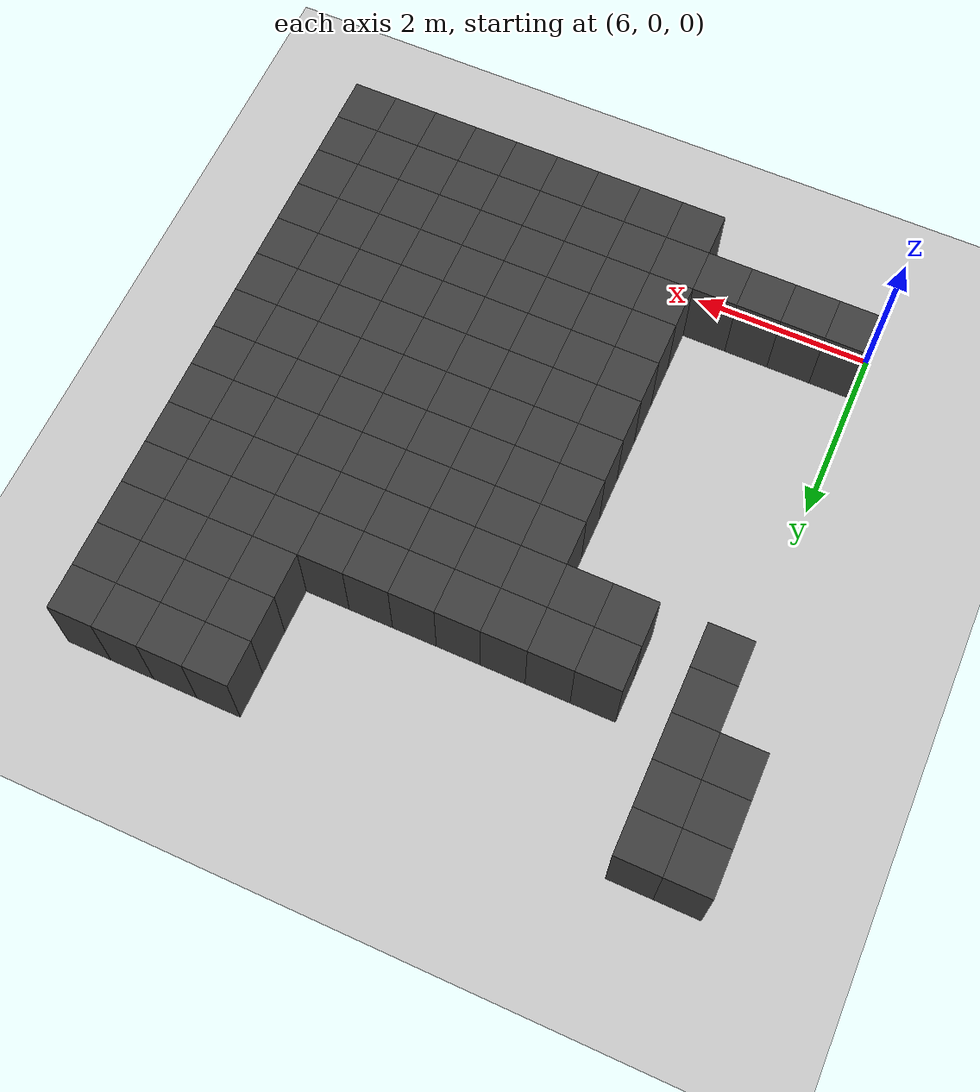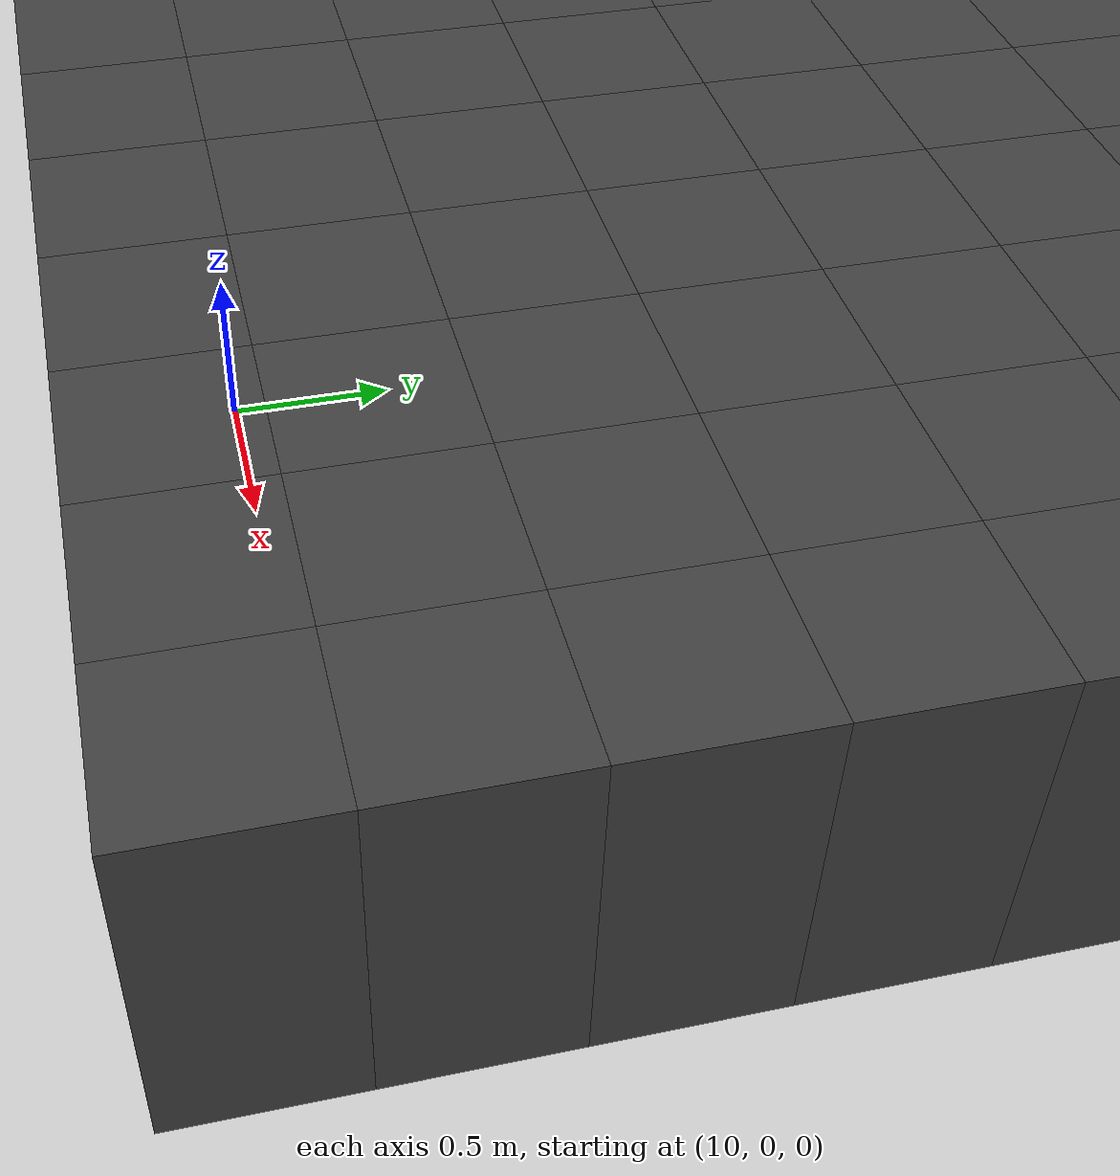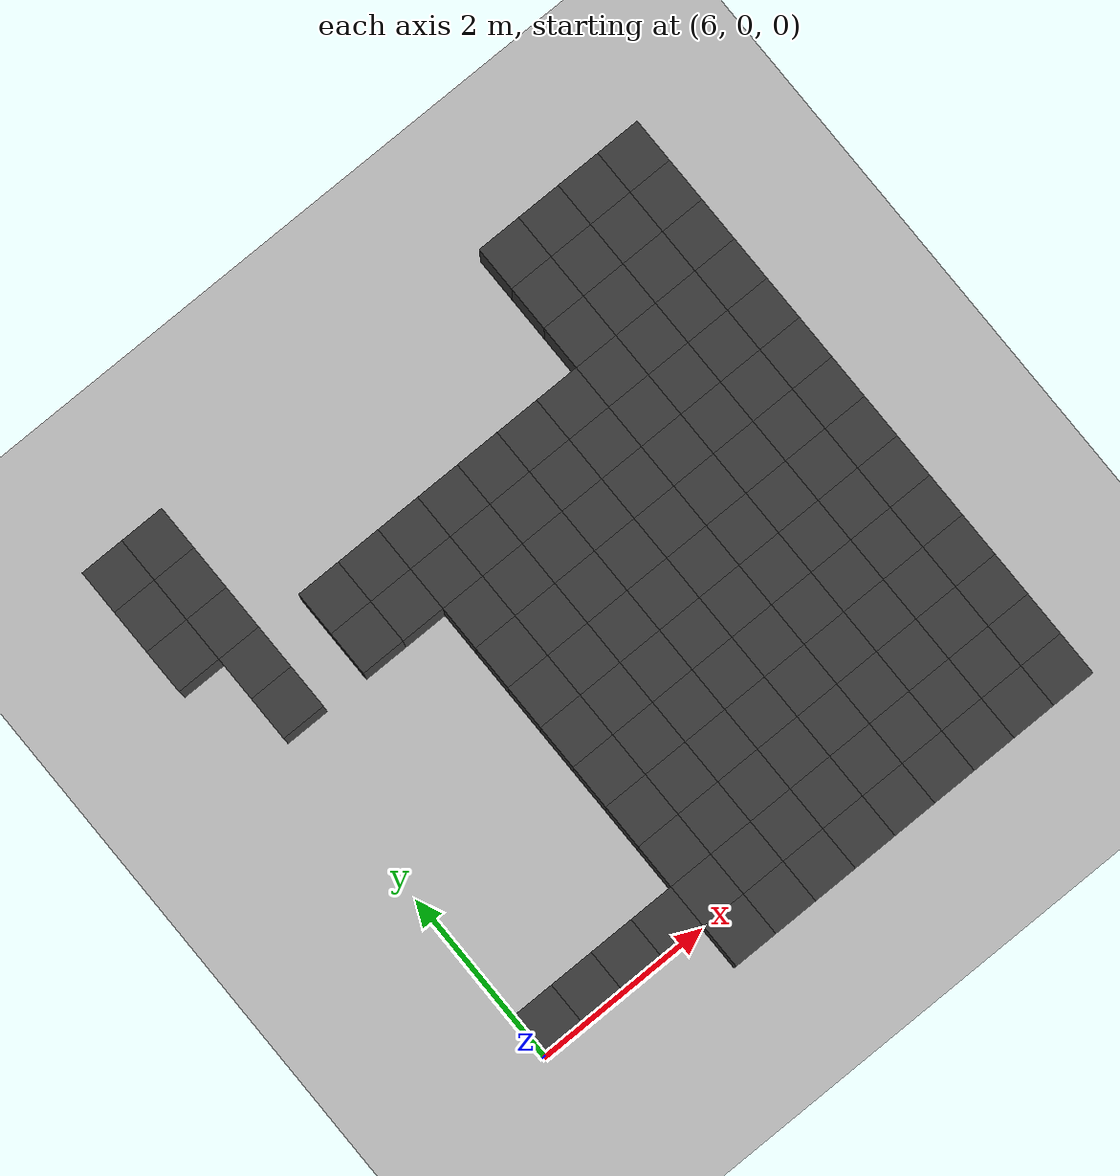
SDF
<sdf version="1.7">
 <world name="map_11779">
  <model name="ground_plane">
   <static>true</static>
   <link name="link">
    <collision name="collision">
     <geometry><plane><normal>0 0 1</normal><size>200 200</size></plane></geometry>
    </collision>
    <visual name="visual">
     <geometry><plane><normal>0 0 1</normal><size>200 200</size></plane></geometry>
     <material><ambient>0.8 0.8 0.8 1</ambient><diffuse>0.8 0.8 0.8 1</diffuse></material>
    </visual>
   </link>
  </model>
  <model name="maze_environment">
   <static>true</static>
   <link name="wall_532">
    <pose>5.750 6.250 0.500 0 0 0</pose>
    <collision name="col"><geometry><box><size>0.5 0.5 1.0</size></box></geometry></collision>
    <visual name="vis">
     <geometry><box><size>0.5 0.5 1.0</size></box></geometry>
     <material><ambient>0.15 0.15 0.15 1</ambient><diffuse>0.25 0.25 0.25 1</diffuse></material>
    </visual>
   </link>
   <link name="wall_533">
    <pose>6.250 6.250 0.500 0 0 0</pose>
    <collision name="col"><geometry><box><size>0.5 0.5 1.0</size></box></geometry></collision>
    <visual name="vis">
     <geometry><box><size>0.5 0.5 1.0</size></box></geometry>
     <material><ambient>0.15 0.15 0.15 1</ambient><diffuse>0.25 0.25 0.25 1</diffuse></material>
    </visual>
   </link>
   <link name="wall_534">
    <pose>10.750 6.250 0.500 0 0 0</pose>
    <collision name="col"><geometry><box><size>0.5 0.5 1.0</size></box></geometry></collision>
    <visual name="vis">
     <geometry><box><size>0.5 0.5 1.0</size></box></geometry>
     <material><ambient>0.15 0.15 0.15 1</ambient><diffuse>0.25 0.25 0.25 1</diffuse></material>
    </visual>
   </link>
   <link name="wall_535">
    <pose>11.250 6.250 0.500 0 0 0</pose>
    <collision name="col"><geometry><box><size>0.5 0.5 1.0</size></box></geometry></collision>
    <visual name="vis">
     <geometry><box><size>0.5 0.5 1.0</size></box></geometry>
     <material><ambient>0.15 0.15 0.15 1</ambient><diffuse>0.25 0.25 0.25 1</diffuse></material>
    </visual>
   </link>
   <link name="wall_536">
    <pose>11.750 6.250 0.500 0 0 0</pose>
    <collision name="col"><geometry><box><size>0.5 0.5 1.0</size></box></geometry></collision>
    <visual name="vis">
     <geometry><box><size>0.5 0.5 1.0</size></box></geometry>
     <material><ambient>0.15 0.15 0.15 1</ambient><diffuse>0.25 0.25 0.25 1</diffuse></material>
    </visual>
   </link>
   <link name="wall_537">
    <pose>12.250 6.250 0.500 0 0 0</pose>
    <collision name="col"><geometry><box><size>0.5 0.5 1.0</size></box></geometry></collision>
    <visual name="vis">
     <geometry><box><size>0.5 0.5 1.0</size></box></geometry>
     <material><ambient>0.15 0.15 0.15 1</ambient><diffuse>0.25 0.25 0.25 1</diffuse></material>
    </visual>
   </link>
   <link name="wall_566">
    <pose>5.750 5.750 0.500 0 0 0</pose>
    <collision name="col"><geometry><box><size>0.5 0.5 1.0</size></box></geometry></collision>
    <visual name="vis">
     <geometry><box><size>0.5 0.5 1.0</size></box></geometry>
     <material><ambient>0.15 0.15 0.15 1</ambient><diffuse>0.25 0.25 0.25 1</diffuse></material>
    </visual>
   </link>
   <link name="wall_567">
    <pose>6.250 5.750 0.500 0 0 0</pose>
    <collision name="col"><geometry><box><size>0.5 0.5 1.0</size></box></geometry></collision>
    <visual name="vis">
     <geometry><box><size>0.5 0.5 1.0</size></box></geometry>
     <material><ambient>0.15 0.15 0.15 1</ambient><diffuse>0.25 0.25 0.25 1</diffuse></material>
    </visual>
   </link>
   <link name="wall_568">
    <pose>10.750 5.750 0.500 0 0 0</pose>
    <collision name="col"><geometry><box><size>0.5 0.5 1.0</size></box></geometry></collision>
    <visual name="vis">
     <geometry><box><size>0.5 0.5 1.0</size></box></geometry>
     <material><ambient>0.15 0.15 0.15 1</ambient><diffuse>0.25 0.25 0.25 1</diffuse></material>
    </visual>
   </link>
   <link name="wall_569">
    <pose>11.250 5.750 0.500 0 0 0</pose>
    <collision name="col"><geometry><box><size>0.5 0.5 1.0</size></box></geometry></collision>
    <visual name="vis">
     <geometry><box><size>0.5 0.5 1.0</size></box></geometry>
     <material><ambient>0.15 0.15 0.15 1</ambient><diffuse>0.25 0.25 0.25 1</diffuse></material>
    </visual>
   </link>
   <link name="wall_570">
    <pose>11.750 5.750 0.500 0 0 0</pose>
    <collision name="col"><geometry><box><size>0.5 0.5 1.0</size></box></geometry></collision>
    <visual name="vis">
     <geometry><box><size>0.5 0.5 1.0</size></box></geometry>
     <material><ambient>0.15 0.15 0.15 1</ambient><diffuse>0.25 0.25 0.25 1</diffuse></material>
    </visual>
   </link>
   <link name="wall_571">
    <pose>12.250 5.750 0.500 0 0 0</pose>
    <collision name="col"><geometry><box><size>0.5 0.5 1.0</size></box></geometry></collision>
    <visual name="vis">
     <geometry><box><size>0.5 0.5 1.0</size></box></geometry>
     <material><ambient>0.15 0.15 0.15 1</ambient><diffuse>0.25 0.25 0.25 1</diffuse></material>
    </visual>
   </link>
   <link name="wall_600">
    <pose>5.750 5.250 0.500 0 0 0</pose>
    <collision name="col"><geometry><box><size>0.5 0.5 1.0</size></box></geometry></collision>
    <visual name="vis">
     <geometry><box><size>0.5 0.5 1.0</size></box></geometry>
     <material><ambient>0.15 0.15 0.15 1</ambient><diffuse>0.25 0.25 0.25 1</diffuse></material>
    </visual>
   </link>
   <link name="wall_601">
    <pose>6.250 5.250 0.500 0 0 0</pose>
    <collision name="col"><geometry><box><size>0.5 0.5 1.0</size></box></geometry></collision>
    <visual name="vis">
     <geometry><box><size>0.5 0.5 1.0</size></box></geometry>
     <material><ambient>0.15 0.15 0.15 1</ambient><diffuse>0.25 0.25 0.25 1</diffuse></material>
    </visual>
   </link>
   <link name="wall_602">
    <pose>10.750 5.250 0.500 0 0 0</pose>
    <collision name="col"><geometry><box><size>0.5 0.5 1.0</size></box></geometry></collision>
    <visual name="vis">
     <geometry><box><size>0.5 0.5 1.0</size></box></geometry>
     <material><ambient>0.15 0.15 0.15 1</ambient><diffuse>0.25 0.25 0.25 1</diffuse></material>
    </visual>
   </link>
   <link name="wall_603">
    <pose>11.250 5.250 0.500 0 0 0</pose>
    <collision name="col"><geometry><box><size>0.5 0.5 1.0</size></box></geometry></collision>
    <visual name="vis">
     <geometry><box><size>0.5 0.5 1.0</size></box></geometry>
     <material><ambient>0.15 0.15 0.15 1</ambient><diffuse>0.25 0.25 0.25 1</diffuse></material>
    </visual>
   </link>
   <link name="wall_604">
    <pose>11.750 5.250 0.500 0 0 0</pose>
    <collision name="col"><geometry><box><size>0.5 0.5 1.0</size></box></geometry></collision>
    <visual name="vis">
     <geometry><box><size>0.5 0.5 1.0</size></box></geometry>
     <material><ambient>0.15 0.15 0.15 1</ambient><diffuse>0.25 0.25 0.25 1</diffuse></material>
    </visual>
   </link>
   <link name="wall_605">
    <pose>12.250 5.250 0.500 0 0 0</pose>
    <collision name="col"><geometry><box><size>0.5 0.5 1.0</size></box></geometry></collision>
    <visual name="vis">
     <geometry><box><size>0.5 0.5 1.0</size></box></geometry>
     <material><ambient>0.15 0.15 0.15 1</ambient><diffuse>0.25 0.25 0.25 1</diffuse></material>
    </visual>
   </link>
   <link name="wall_635">
    <pose>6.250 4.750 0.500 0 0 0</pose>
    <collision name="col"><geometry><box><size>0.5 0.5 1.0</size></box></geometry></collision>
    <visual name="vis">
     <geometry><box><size>0.5 0.5 1.0</size></box></geometry>
     <material><ambient>0.15 0.15 0.15 1</ambient><diffuse>0.25 0.25 0.25 1</diffuse></material>
    </visual>
   </link>
   <link name="wall_636">
    <pose>7.250 4.750 0.500 0 0 0</pose>
    <collision name="col"><geometry><box><size>0.5 0.5 1.0</size></box></geometry></collision>
    <visual name="vis">
     <geometry><box><size>0.5 0.5 1.0</size></box></geometry>
     <material><ambient>0.15 0.15 0.15 1</ambient><diffuse>0.25 0.25 0.25 1</diffuse></material>
    </visual>
   </link>
   <link name="wall_637">
    <pose>7.750 4.750 0.500 0 0 0</pose>
    <collision name="col"><geometry><box><size>0.5 0.5 1.0</size></box></geometry></collision>
    <visual name="vis">
     <geometry><box><size>0.5 0.5 1.0</size></box></geometry>
     <material><ambient>0.15 0.15 0.15 1</ambient><diffuse>0.25 0.25 0.25 1</diffuse></material>
    </visual>
   </link>
   <link name="wall_638">
    <pose>8.250 4.750 0.500 0 0 0</pose>
    <collision name="col"><geometry><box><size>0.5 0.5 1.0</size></box></geometry></collision>
    <visual name="vis">
     <geometry><box><size>0.5 0.5 1.0</size></box></geometry>
     <material><ambient>0.15 0.15 0.15 1</ambient><diffuse>0.25 0.25 0.25 1</diffuse></material>
    </visual>
   </link>
   <link name="wall_639">
    <pose>8.750 4.750 0.500 0 0 0</pose>
    <collision name="col"><geometry><box><size>0.5 0.5 1.0</size></box></geometry></collision>
    <visual name="vis">
     <geometry><box><size>0.5 0.5 1.0</size></box></geometry>
     <material><ambient>0.15 0.15 0.15 1</ambient><diffuse>0.25 0.25 0.25 1</diffuse></material>
    </visual>
   </link>
   <link name="wall_640">
    <pose>9.250 4.750 0.500 0 0 0</pose>
    <collision name="col"><geometry><box><size>0.5 0.5 1.0</size></box></geometry></collision>
    <visual name="vis">
     <geometry><box><size>0.5 0.5 1.0</size></box></geometry>
     <material><ambient>0.15 0.15 0.15 1</ambient><diffuse>0.25 0.25 0.25 1</diffuse></material>
    </visual>
   </link>
   <link name="wall_641">
    <pose>9.750 4.750 0.500 0 0 0</pose>
    <collision name="col"><geometry><box><size>0.5 0.5 1.0</size></box></geometry></collision>
    <visual name="vis">
     <geometry><box><size>0.5 0.5 1.0</size></box></geometry>
     <material><ambient>0.15 0.15 0.15 1</ambient><diffuse>0.25 0.25 0.25 1</diffuse></material>
    </visual>
   </link>
   <link name="wall_642">
    <pose>10.250 4.750 0.500 0 0 0</pose>
    <collision name="col"><geometry><box><size>0.5 0.5 1.0</size></box></geometry></collision>
    <visual name="vis">
     <geometry><box><size>0.5 0.5 1.0</size></box></geometry>
     <material><ambient>0.15 0.15 0.15 1</ambient><diffuse>0.25 0.25 0.25 1</diffuse></material>
    </visual>
   </link>
   <link name="wall_643">
    <pose>10.750 4.750 0.500 0 0 0</pose>
    <collision name="col"><geometry><box><size>0.5 0.5 1.0</size></box></geometry></collision>
    <visual name="vis">
     <geometry><box><size>0.5 0.5 1.0</size></box></geometry>
     <material><ambient>0.15 0.15 0.15 1</ambient><diffuse>0.25 0.25 0.25 1</diffuse></material>
    </visual>
   </link>
   <link name="wall_644">
    <pose>11.250 4.750 0.500 0 0 0</pose>
    <collision name="col"><geometry><box><size>0.5 0.5 1.0</size></box></geometry></collision>
    <visual name="vis">
     <geometry><box><size>0.5 0.5 1.0</size></box></geometry>
     <material><ambient>0.15 0.15 0.15 1</ambient><diffuse>0.25 0.25 0.25 1</diffuse></material>
    </visual>
   </link>
   <link name="wall_645">
    <pose>11.750 4.750 0.500 0 0 0</pose>
    <collision name="col"><geometry><box><size>0.5 0.5 1.0</size></box></geometry></collision>
    <visual name="vis">
     <geometry><box><size>0.5 0.5 1.0</size></box></geometry>
     <material><ambient>0.15 0.15 0.15 1</ambient><diffuse>0.25 0.25 0.25 1</diffuse></material>
    </visual>
   </link>
   <link name="wall_646">
    <pose>12.250 4.750 0.500 0 0 0</pose>
    <collision name="col"><geometry><box><size>0.5 0.5 1.0</size></box></geometry></collision>
    <visual name="vis">
     <geometry><box><size>0.5 0.5 1.0</size></box></geometry>
     <material><ambient>0.15 0.15 0.15 1</ambient><diffuse>0.25 0.25 0.25 1</diffuse></material>
    </visual>
   </link>
   <link name="wall_676">
    <pose>6.250 4.250 0.500 0 0 0</pose>
    <collision name="col"><geometry><box><size>0.5 0.5 1.0</size></box></geometry></collision>
    <visual name="vis">
     <geometry><box><size>0.5 0.5 1.0</size></box></geometry>
     <material><ambient>0.15 0.15 0.15 1</ambient><diffuse>0.25 0.25 0.25 1</diffuse></material>
    </visual>
   </link>
   <link name="wall_677">
    <pose>7.250 4.250 0.500 0 0 0</pose>
    <collision name="col"><geometry><box><size>0.5 0.5 1.0</size></box></geometry></collision>
    <visual name="vis">
     <geometry><box><size>0.5 0.5 1.0</size></box></geometry>
     <material><ambient>0.15 0.15 0.15 1</ambient><diffuse>0.25 0.25 0.25 1</diffuse></material>
    </visual>
   </link>
   <link name="wall_678">
    <pose>7.750 4.250 0.500 0 0 0</pose>
    <collision name="col"><geometry><box><size>0.5 0.5 1.0</size></box></geometry></collision>
    <visual name="vis">
     <geometry><box><size>0.5 0.5 1.0</size></box></geometry>
     <material><ambient>0.15 0.15 0.15 1</ambient><diffuse>0.25 0.25 0.25 1</diffuse></material>
    </visual>
   </link>
   <link name="wall_679">
    <pose>8.250 4.250 0.500 0 0 0</pose>
    <collision name="col"><geometry><box><size>0.5 0.5 1.0</size></box></geometry></collision>
    <visual name="vis">
     <geometry><box><size>0.5 0.5 1.0</size></box></geometry>
     <material><ambient>0.15 0.15 0.15 1</ambient><diffuse>0.25 0.25 0.25 1</diffuse></material>
    </visual>
   </link>
   <link name="wall_680">
    <pose>8.750 4.250 0.500 0 0 0</pose>
    <collision name="col"><geometry><box><size>0.5 0.5 1.0</size></box></geometry></collision>
    <visual name="vis">
     <geometry><box><size>0.5 0.5 1.0</size></box></geometry>
     <material><ambient>0.15 0.15 0.15 1</ambient><diffuse>0.25 0.25 0.25 1</diffuse></material>
    </visual>
   </link>
   <link name="wall_681">
    <pose>9.250 4.250 0.500 0 0 0</pose>
    <collision name="col"><geometry><box><size>0.5 0.5 1.0</size></box></geometry></collision>
    <visual name="vis">
     <geometry><box><size>0.5 0.5 1.0</size></box></geometry>
     <material><ambient>0.15 0.15 0.15 1</ambient><diffuse>0.25 0.25 0.25 1</diffuse></material>
    </visual>
   </link>
   <link name="wall_682">
    <pose>9.750 4.250 0.500 0 0 0</pose>
    <collision name="col"><geometry><box><size>0.5 0.5 1.0</size></box></geometry></collision>
    <visual name="vis">
     <geometry><box><size>0.5 0.5 1.0</size></box></geometry>
     <material><ambient>0.15 0.15 0.15 1</ambient><diffuse>0.25 0.25 0.25 1</diffuse></material>
    </visual>
   </link>
   <link name="wall_683">
    <pose>10.250 4.250 0.500 0 0 0</pose>
    <collision name="col"><geometry><box><size>0.5 0.5 1.0</size></box></geometry></collision>
    <visual name="vis">
     <geometry><box><size>0.5 0.5 1.0</size></box></geometry>
     <material><ambient>0.15 0.15 0.15 1</ambient><diffuse>0.25 0.25 0.25 1</diffuse></material>
    </visual>
   </link>
   <link name="wall_684">
    <pose>10.750 4.250 0.500 0 0 0</pose>
    <collision name="col"><geometry><box><size>0.5 0.5 1.0</size></box></geometry></collision>
    <visual name="vis">
     <geometry><box><size>0.5 0.5 1.0</size></box></geometry>
     <material><ambient>0.15 0.15 0.15 1</ambient><diffuse>0.25 0.25 0.25 1</diffuse></material>
    </visual>
   </link>
   <link name="wall_685">
    <pose>11.250 4.250 0.500 0 0 0</pose>
    <collision name="col"><geometry><box><size>0.5 0.5 1.0</size></box></geometry></collision>
    <visual name="vis">
     <geometry><box><size>0.5 0.5 1.0</size></box></geometry>
     <material><ambient>0.15 0.15 0.15 1</ambient><diffuse>0.25 0.25 0.25 1</diffuse></material>
    </visual>
   </link>
   <link name="wall_686">
    <pose>11.750 4.250 0.500 0 0 0</pose>
    <collision name="col"><geometry><box><size>0.5 0.5 1.0</size></box></geometry></collision>
    <visual name="vis">
     <geometry><box><size>0.5 0.5 1.0</size></box></geometry>
     <material><ambient>0.15 0.15 0.15 1</ambient><diffuse>0.25 0.25 0.25 1</diffuse></material>
    </visual>
   </link>
   <link name="wall_687">
    <pose>12.250 4.250 0.500 0 0 0</pose>
    <collision name="col"><geometry><box><size>0.5 0.5 1.0</size></box></geometry></collision>
    <visual name="vis">
     <geometry><box><size>0.5 0.5 1.0</size></box></geometry>
     <material><ambient>0.15 0.15 0.15 1</ambient><diffuse>0.25 0.25 0.25 1</diffuse></material>
    </visual>
   </link>
   <link name="wall_722">
    <pose>8.250 3.750 0.500 0 0 0</pose>
    <collision name="col"><geometry><box><size>0.5 0.5 1.0</size></box></geometry></collision>
    <visual name="vis">
     <geometry><box><size>0.5 0.5 1.0</size></box></geometry>
     <material><ambient>0.15 0.15 0.15 1</ambient><diffuse>0.25 0.25 0.25 1</diffuse></material>
    </visual>
   </link>
   <link name="wall_723">
    <pose>8.750 3.750 0.500 0 0 0</pose>
    <collision name="col"><geometry><box><size>0.5 0.5 1.0</size></box></geometry></collision>
    <visual name="vis">
     <geometry><box><size>0.5 0.5 1.0</size></box></geometry>
     <material><ambient>0.15 0.15 0.15 1</ambient><diffuse>0.25 0.25 0.25 1</diffuse></material>
    </visual>
   </link>
   <link name="wall_724">
    <pose>9.250 3.750 0.500 0 0 0</pose>
    <collision name="col"><geometry><box><size>0.5 0.5 1.0</size></box></geometry></collision>
    <visual name="vis">
     <geometry><box><size>0.5 0.5 1.0</size></box></geometry>
     <material><ambient>0.15 0.15 0.15 1</ambient><diffuse>0.25 0.25 0.25 1</diffuse></material>
    </visual>
   </link>
   <link name="wall_725">
    <pose>9.750 3.750 0.500 0 0 0</pose>
    <collision name="col"><geometry><box><size>0.5 0.5 1.0</size></box></geometry></collision>
    <visual name="vis">
     <geometry><box><size>0.5 0.5 1.0</size></box></geometry>
     <material><ambient>0.15 0.15 0.15 1</ambient><diffuse>0.25 0.25 0.25 1</diffuse></material>
    </visual>
   </link>
   <link name="wall_726">
    <pose>10.250 3.750 0.500 0 0 0</pose>
    <collision name="col"><geometry><box><size>0.5 0.5 1.0</size></box></geometry></collision>
    <visual name="vis">
     <geometry><box><size>0.5 0.5 1.0</size></box></geometry>
     <material><ambient>0.15 0.15 0.15 1</ambient><diffuse>0.25 0.25 0.25 1</diffuse></material>
    </visual>
   </link>
   <link name="wall_727">
    <pose>10.750 3.750 0.500 0 0 0</pose>
    <collision name="col"><geometry><box><size>0.5 0.5 1.0</size></box></geometry></collision>
    <visual name="vis">
     <geometry><box><size>0.5 0.5 1.0</size></box></geometry>
     <material><ambient>0.15 0.15 0.15 1</ambient><diffuse>0.25 0.25 0.25 1</diffuse></material>
    </visual>
   </link>
   <link name="wall_728">
    <pose>11.250 3.750 0.500 0 0 0</pose>
    <collision name="col"><geometry><box><size>0.5 0.5 1.0</size></box></geometry></collision>
    <visual name="vis">
     <geometry><box><size>0.5 0.5 1.0</size></box></geometry>
     <material><ambient>0.15 0.15 0.15 1</ambient><diffuse>0.25 0.25 0.25 1</diffuse></material>
    </visual>
   </link>
   <link name="wall_729">
    <pose>11.750 3.750 0.500 0 0 0</pose>
    <collision name="col"><geometry><box><size>0.5 0.5 1.0</size></box></geometry></collision>
    <visual name="vis">
     <geometry><box><size>0.5 0.5 1.0</size></box></geometry>
     <material><ambient>0.15 0.15 0.15 1</ambient><diffuse>0.25 0.25 0.25 1</diffuse></material>
    </visual>
   </link>
   <link name="wall_730">
    <pose>12.250 3.750 0.500 0 0 0</pose>
    <collision name="col"><geometry><box><size>0.5 0.5 1.0</size></box></geometry></collision>
    <visual name="vis">
     <geometry><box><size>0.5 0.5 1.0</size></box></geometry>
     <material><ambient>0.15 0.15 0.15 1</ambient><diffuse>0.25 0.25 0.25 1</diffuse></material>
    </visual>
   </link>
   <link name="wall_765">
    <pose>8.250 3.250 0.500 0 0 0</pose>
    <collision name="col"><geometry><box><size>0.5 0.5 1.0</size></box></geometry></collision>
    <visual name="vis">
     <geometry><box><size>0.5 0.5 1.0</size></box></geometry>
     <material><ambient>0.15 0.15 0.15 1</ambient><diffuse>0.25 0.25 0.25 1</diffuse></material>
    </visual>
   </link>
   <link name="wall_766">
    <pose>8.750 3.250 0.500 0 0 0</pose>
    <collision name="col"><geometry><box><size>0.5 0.5 1.0</size></box></geometry></collision>
    <visual name="vis">
     <geometry><box><size>0.5 0.5 1.0</size></box></geometry>
     <material><ambient>0.15 0.15 0.15 1</ambient><diffuse>0.25 0.25 0.25 1</diffuse></material>
    </visual>
   </link>
   <link name="wall_767">
    <pose>9.250 3.250 0.500 0 0 0</pose>
    <collision name="col"><geometry><box><size>0.5 0.5 1.0</size></box></geometry></collision>
    <visual name="vis">
     <geometry><box><size>0.5 0.5 1.0</size></box></geometry>
     <material><ambient>0.15 0.15 0.15 1</ambient><diffuse>0.25 0.25 0.25 1</diffuse></material>
    </visual>
   </link>
   <link name="wall_768">
    <pose>9.750 3.250 0.500 0 0 0</pose>
    <collision name="col"><geometry><box><size>0.5 0.5 1.0</size></box></geometry></collision>
    <visual name="vis">
     <geometry><box><size>0.5 0.5 1.0</size></box></geometry>
     <material><ambient>0.15 0.15 0.15 1</ambient><diffuse>0.25 0.25 0.25 1</diffuse></material>
    </visual>
   </link>
   <link name="wall_769">
    <pose>10.250 3.250 0.500 0 0 0</pose>
    <collision name="col"><geometry><box><size>0.5 0.5 1.0</size></box></geometry></collision>
    <visual name="vis">
     <geometry><box><size>0.5 0.5 1.0</size></box></geometry>
     <material><ambient>0.15 0.15 0.15 1</ambient><diffuse>0.25 0.25 0.25 1</diffuse></material>
    </visual>
   </link>
   <link name="wall_770">
    <pose>10.750 3.250 0.500 0 0 0</pose>
    <collision name="col"><geometry><box><size>0.5 0.5 1.0</size></box></geometry></collision>
    <visual name="vis">
     <geometry><box><size>0.5 0.5 1.0</size></box></geometry>
     <material><ambient>0.15 0.15 0.15 1</ambient><diffuse>0.25 0.25 0.25 1</diffuse></material>
    </visual>
   </link>
   <link name="wall_771">
    <pose>11.250 3.250 0.500 0 0 0</pose>
    <collision name="col"><geometry><box><size>0.5 0.5 1.0</size></box></geometry></collision>
    <visual name="vis">
     <geometry><box><size>0.5 0.5 1.0</size></box></geometry>
     <material><ambient>0.15 0.15 0.15 1</ambient><diffuse>0.25 0.25 0.25 1</diffuse></material>
    </visual>
   </link>
   <link name="wall_772">
    <pose>11.750 3.250 0.500 0 0 0</pose>
    <collision name="col"><geometry><box><size>0.5 0.5 1.0</size></box></geometry></collision>
    <visual name="vis">
     <geometry><box><size>0.5 0.5 1.0</size></box></geometry>
     <material><ambient>0.15 0.15 0.15 1</ambient><diffuse>0.25 0.25 0.25 1</diffuse></material>
    </visual>
   </link>
   <link name="wall_773">
    <pose>12.250 3.250 0.500 0 0 0</pose>
    <collision name="col"><geometry><box><size>0.5 0.5 1.0</size></box></geometry></collision>
    <visual name="vis">
     <geometry><box><size>0.5 0.5 1.0</size></box></geometry>
     <material><ambient>0.15 0.15 0.15 1</ambient><diffuse>0.25 0.25 0.25 1</diffuse></material>
    </visual>
   </link>
   <link name="wall_808">
    <pose>8.250 2.750 0.500 0 0 0</pose>
    <collision name="col"><geometry><box><size>0.5 0.5 1.0</size></box></geometry></collision>
    <visual name="vis">
     <geometry><box><size>0.5 0.5 1.0</size></box></geometry>
     <material><ambient>0.15 0.15 0.15 1</ambient><diffuse>0.25 0.25 0.25 1</diffuse></material>
    </visual>
   </link>
   <link name="wall_809">
    <pose>8.750 2.750 0.500 0 0 0</pose>
    <collision name="col"><geometry><box><size>0.5 0.5 1.0</size></box></geometry></collision>
    <visual name="vis">
     <geometry><box><size>0.5 0.5 1.0</size></box></geometry>
     <material><ambient>0.15 0.15 0.15 1</ambient><diffuse>0.25 0.25 0.25 1</diffuse></material>
    </visual>
   </link>
   <link name="wall_810">
    <pose>9.250 2.750 0.500 0 0 0</pose>
    <collision name="col"><geometry><box><size>0.5 0.5 1.0</size></box></geometry></collision>
    <visual name="vis">
     <geometry><box><size>0.5 0.5 1.0</size></box></geometry>
     <material><ambient>0.15 0.15 0.15 1</ambient><diffuse>0.25 0.25 0.25 1</diffuse></material>
    </visual>
   </link>
   <link name="wall_811">
    <pose>9.750 2.750 0.500 0 0 0</pose>
    <collision name="col"><geometry><box><size>0.5 0.5 1.0</size></box></geometry></collision>
    <visual name="vis">
     <geometry><box><size>0.5 0.5 1.0</size></box></geometry>
     <material><ambient>0.15 0.15 0.15 1</ambient><diffuse>0.25 0.25 0.25 1</diffuse></material>
    </visual>
   </link>
   <link name="wall_812">
    <pose>10.250 2.750 0.500 0 0 0</pose>
    <collision name="col"><geometry><box><size>0.5 0.5 1.0</size></box></geometry></collision>
    <visual name="vis">
     <geometry><box><size>0.5 0.5 1.0</size></box></geometry>
     <material><ambient>0.15 0.15 0.15 1</ambient><diffuse>0.25 0.25 0.25 1</diffuse></material>
    </visual>
   </link>
   <link name="wall_813">
    <pose>10.750 2.750 0.500 0 0 0</pose>
    <collision name="col"><geometry><box><size>0.5 0.5 1.0</size></box></geometry></collision>
    <visual name="vis">
     <geometry><box><size>0.5 0.5 1.0</size></box></geometry>
     <material><ambient>0.15 0.15 0.15 1</ambient><diffuse>0.25 0.25 0.25 1</diffuse></material>
    </visual>
   </link>
   <link name="wall_814">
    <pose>11.250 2.750 0.500 0 0 0</pose>
    <collision name="col"><geometry><box><size>0.5 0.5 1.0</size></box></geometry></collision>
    <visual name="vis">
     <geometry><box><size>0.5 0.5 1.0</size></box></geometry>
     <material><ambient>0.15 0.15 0.15 1</ambient><diffuse>0.25 0.25 0.25 1</diffuse></material>
    </visual>
   </link>
   <link name="wall_815">
    <pose>11.750 2.750 0.500 0 0 0</pose>
    <collision name="col"><geometry><box><size>0.5 0.5 1.0</size></box></geometry></collision>
    <visual name="vis">
     <geometry><box><size>0.5 0.5 1.0</size></box></geometry>
     <material><ambient>0.15 0.15 0.15 1</ambient><diffuse>0.25 0.25 0.25 1</diffuse></material>
    </visual>
   </link>
   <link name="wall_816">
    <pose>12.250 2.750 0.500 0 0 0</pose>
    <collision name="col"><geometry><box><size>0.5 0.5 1.0</size></box></geometry></collision>
    <visual name="vis">
     <geometry><box><size>0.5 0.5 1.0</size></box></geometry>
     <material><ambient>0.15 0.15 0.15 1</ambient><diffuse>0.25 0.25 0.25 1</diffuse></material>
    </visual>
   </link>
   <link name="wall_837">
    <pose>8.250 2.250 0.500 0 0 0</pose>
    <collision name="col"><geometry><box><size>0.5 0.5 1.0</size></box></geometry></collision>
    <visual name="vis">
     <geometry><box><size>0.5 0.5 1.0</size></box></geometry>
     <material><ambient>0.15 0.15 0.15 1</ambient><diffuse>0.25 0.25 0.25 1</diffuse></material>
    </visual>
   </link>
   <link name="wall_838">
    <pose>8.750 2.250 0.500 0 0 0</pose>
    <collision name="col"><geometry><box><size>0.5 0.5 1.0</size></box></geometry></collision>
    <visual name="vis">
     <geometry><box><size>0.5 0.5 1.0</size></box></geometry>
     <material><ambient>0.15 0.15 0.15 1</ambient><diffuse>0.25 0.25 0.25 1</diffuse></material>
    </visual>
   </link>
   <link name="wall_839">
    <pose>9.250 2.250 0.500 0 0 0</pose>
    <collision name="col"><geometry><box><size>0.5 0.5 1.0</size></box></geometry></collision>
    <visual name="vis">
     <geometry><box><size>0.5 0.5 1.0</size></box></geometry>
     <material><ambient>0.15 0.15 0.15 1</ambient><diffuse>0.25 0.25 0.25 1</diffuse></material>
    </visual>
   </link>
   <link name="wall_840">
    <pose>9.750 2.250 0.500 0 0 0</pose>
    <collision name="col"><geometry><box><size>0.5 0.5 1.0</size></box></geometry></collision>
    <visual name="vis">
     <geometry><box><size>0.5 0.5 1.0</size></box></geometry>
     <material><ambient>0.15 0.15 0.15 1</ambient><diffuse>0.25 0.25 0.25 1</diffuse></material>
    </visual>
   </link>
   <link name="wall_841">
    <pose>10.250 2.250 0.500 0 0 0</pose>
    <collision name="col"><geometry><box><size>0.5 0.5 1.0</size></box></geometry></collision>
    <visual name="vis">
     <geometry><box><size>0.5 0.5 1.0</size></box></geometry>
     <material><ambient>0.15 0.15 0.15 1</ambient><diffuse>0.25 0.25 0.25 1</diffuse></material>
    </visual>
   </link>
   <link name="wall_842">
    <pose>10.750 2.250 0.500 0 0 0</pose>
    <collision name="col"><geometry><box><size>0.5 0.5 1.0</size></box></geometry></collision>
    <visual name="vis">
     <geometry><box><size>0.5 0.5 1.0</size></box></geometry>
     <material><ambient>0.15 0.15 0.15 1</ambient><diffuse>0.25 0.25 0.25 1</diffuse></material>
    </visual>
   </link>
   <link name="wall_843">
    <pose>11.250 2.250 0.500 0 0 0</pose>
    <collision name="col"><geometry><box><size>0.5 0.5 1.0</size></box></geometry></collision>
    <visual name="vis">
     <geometry><box><size>0.5 0.5 1.0</size></box></geometry>
     <material><ambient>0.15 0.15 0.15 1</ambient><diffuse>0.25 0.25 0.25 1</diffuse></material>
    </visual>
   </link>
   <link name="wall_844">
    <pose>11.750 2.250 0.500 0 0 0</pose>
    <collision name="col"><geometry><box><size>0.5 0.5 1.0</size></box></geometry></collision>
    <visual name="vis">
     <geometry><box><size>0.5 0.5 1.0</size></box></geometry>
     <material><ambient>0.15 0.15 0.15 1</ambient><diffuse>0.25 0.25 0.25 1</diffuse></material>
    </visual>
   </link>
   <link name="wall_845">
    <pose>12.250 2.250 0.500 0 0 0</pose>
    <collision name="col"><geometry><box><size>0.5 0.5 1.0</size></box></geometry></collision>
    <visual name="vis">
     <geometry><box><size>0.5 0.5 1.0</size></box></geometry>
     <material><ambient>0.15 0.15 0.15 1</ambient><diffuse>0.25 0.25 0.25 1</diffuse></material>
    </visual>
   </link>
   <link name="wall_879">
    <pose>8.250 1.750 0.500 0 0 0</pose>
    <collision name="col"><geometry><box><size>0.5 0.5 1.0</size></box></geometry></collision>
    <visual name="vis">
     <geometry><box><size>0.5 0.5 1.0</size></box></geometry>
     <material><ambient>0.15 0.15 0.15 1</ambient><diffuse>0.25 0.25 0.25 1</diffuse></material>
    </visual>
   </link>
   <link name="wall_880">
    <pose>8.750 1.750 0.500 0 0 0</pose>
    <collision name="col"><geometry><box><size>0.5 0.5 1.0</size></box></geometry></collision>
    <visual name="vis">
     <geometry><box><size>0.5 0.5 1.0</size></box></geometry>
     <material><ambient>0.15 0.15 0.15 1</ambient><diffuse>0.25 0.25 0.25 1</diffuse></material>
    </visual>
   </link>
   <link name="wall_881">
    <pose>9.250 1.750 0.500 0 0 0</pose>
    <collision name="col"><geometry><box><size>0.5 0.5 1.0</size></box></geometry></collision>
    <visual name="vis">
     <geometry><box><size>0.5 0.5 1.0</size></box></geometry>
     <material><ambient>0.15 0.15 0.15 1</ambient><diffuse>0.25 0.25 0.25 1</diffuse></material>
    </visual>
   </link>
   <link name="wall_882">
    <pose>9.750 1.750 0.500 0 0 0</pose>
    <collision name="col"><geometry><box><size>0.5 0.5 1.0</size></box></geometry></collision>
    <visual name="vis">
     <geometry><box><size>0.5 0.5 1.0</size></box></geometry>
     <material><ambient>0.15 0.15 0.15 1</ambient><diffuse>0.25 0.25 0.25 1</diffuse></material>
    </visual>
   </link>
   <link name="wall_883">
    <pose>10.250 1.750 0.500 0 0 0</pose>
    <collision name="col"><geometry><box><size>0.5 0.5 1.0</size></box></geometry></collision>
    <visual name="vis">
     <geometry><box><size>0.5 0.5 1.0</size></box></geometry>
     <material><ambient>0.15 0.15 0.15 1</ambient><diffuse>0.25 0.25 0.25 1</diffuse></material>
    </visual>
   </link>
   <link name="wall_884">
    <pose>10.750 1.750 0.500 0 0 0</pose>
    <collision name="col"><geometry><box><size>0.5 0.5 1.0</size></box></geometry></collision>
    <visual name="vis">
     <geometry><box><size>0.5 0.5 1.0</size></box></geometry>
     <material><ambient>0.15 0.15 0.15 1</ambient><diffuse>0.25 0.25 0.25 1</diffuse></material>
    </visual>
   </link>
   <link name="wall_885">
    <pose>11.250 1.750 0.500 0 0 0</pose>
    <collision name="col"><geometry><box><size>0.5 0.5 1.0</size></box></geometry></collision>
    <visual name="vis">
     <geometry><box><size>0.5 0.5 1.0</size></box></geometry>
     <material><ambient>0.15 0.15 0.15 1</ambient><diffuse>0.25 0.25 0.25 1</diffuse></material>
    </visual>
   </link>
   <link name="wall_886">
    <pose>11.750 1.750 0.500 0 0 0</pose>
    <collision name="col"><geometry><box><size>0.5 0.5 1.0</size></box></geometry></collision>
    <visual name="vis">
     <geometry><box><size>0.5 0.5 1.0</size></box></geometry>
     <material><ambient>0.15 0.15 0.15 1</ambient><diffuse>0.25 0.25 0.25 1</diffuse></material>
    </visual>
   </link>
   <link name="wall_887">
    <pose>12.250 1.750 0.500 0 0 0</pose>
    <collision name="col"><geometry><box><size>0.5 0.5 1.0</size></box></geometry></collision>
    <visual name="vis">
     <geometry><box><size>0.5 0.5 1.0</size></box></geometry>
     <material><ambient>0.15 0.15 0.15 1</ambient><diffuse>0.25 0.25 0.25 1</diffuse></material>
    </visual>
   </link>
   <link name="wall_921">
    <pose>8.250 1.250 0.500 0 0 0</pose>
    <collision name="col"><geometry><box><size>0.5 0.5 1.0</size></box></geometry></collision>
    <visual name="vis">
     <geometry><box><size>0.5 0.5 1.0</size></box></geometry>
     <material><ambient>0.15 0.15 0.15 1</ambient><diffuse>0.25 0.25 0.25 1</diffuse></material>
    </visual>
   </link>
   <link name="wall_922">
    <pose>8.750 1.250 0.500 0 0 0</pose>
    <collision name="col"><geometry><box><size>0.5 0.5 1.0</size></box></geometry></collision>
    <visual name="vis">
     <geometry><box><size>0.5 0.5 1.0</size></box></geometry>
     <material><ambient>0.15 0.15 0.15 1</ambient><diffuse>0.25 0.25 0.25 1</diffuse></material>
    </visual>
   </link>
   <link name="wall_923">
    <pose>9.250 1.250 0.500 0 0 0</pose>
    <collision name="col"><geometry><box><size>0.5 0.5 1.0</size></box></geometry></collision>
    <visual name="vis">
     <geometry><box><size>0.5 0.5 1.0</size></box></geometry>
     <material><ambient>0.15 0.15 0.15 1</ambient><diffuse>0.25 0.25 0.25 1</diffuse></material>
    </visual>
   </link>
   <link name="wall_924">
    <pose>9.750 1.250 0.500 0 0 0</pose>
    <collision name="col"><geometry><box><size>0.5 0.5 1.0</size></box></geometry></collision>
    <visual name="vis">
     <geometry><box><size>0.5 0.5 1.0</size></box></geometry>
     <material><ambient>0.15 0.15 0.15 1</ambient><diffuse>0.25 0.25 0.25 1</diffuse></material>
    </visual>
   </link>
   <link name="wall_925">
    <pose>10.250 1.250 0.500 0 0 0</pose>
    <collision name="col"><geometry><box><size>0.5 0.5 1.0</size></box></geometry></collision>
    <visual name="vis">
     <geometry><box><size>0.5 0.5 1.0</size></box></geometry>
     <material><ambient>0.15 0.15 0.15 1</ambient><diffuse>0.25 0.25 0.25 1</diffuse></material>
    </visual>
   </link>
   <link name="wall_926">
    <pose>10.750 1.250 0.500 0 0 0</pose>
    <collision name="col"><geometry><box><size>0.5 0.5 1.0</size></box></geometry></collision>
    <visual name="vis">
     <geometry><box><size>0.5 0.5 1.0</size></box></geometry>
     <material><ambient>0.15 0.15 0.15 1</ambient><diffuse>0.25 0.25 0.25 1</diffuse></material>
    </visual>
   </link>
   <link name="wall_927">
    <pose>11.250 1.250 0.500 0 0 0</pose>
    <collision name="col"><geometry><box><size>0.5 0.5 1.0</size></box></geometry></collision>
    <visual name="vis">
     <geometry><box><size>0.5 0.5 1.0</size></box></geometry>
     <material><ambient>0.15 0.15 0.15 1</ambient><diffuse>0.25 0.25 0.25 1</diffuse></material>
    </visual>
   </link>
   <link name="wall_928">
    <pose>11.750 1.250 0.500 0 0 0</pose>
    <collision name="col"><geometry><box><size>0.5 0.5 1.0</size></box></geometry></collision>
    <visual name="vis">
     <geometry><box><size>0.5 0.5 1.0</size></box></geometry>
     <material><ambient>0.15 0.15 0.15 1</ambient><diffuse>0.25 0.25 0.25 1</diffuse></material>
    </visual>
   </link>
   <link name="wall_929">
    <pose>12.250 1.250 0.500 0 0 0</pose>
    <collision name="col"><geometry><box><size>0.5 0.5 1.0</size></box></geometry></collision>
    <visual name="vis">
     <geometry><box><size>0.5 0.5 1.0</size></box></geometry>
     <material><ambient>0.15 0.15 0.15 1</ambient><diffuse>0.25 0.25 0.25 1</diffuse></material>
    </visual>
   </link>
   <link name="wall_963">
    <pose>8.250 0.750 0.500 0 0 0</pose>
    <collision name="col"><geometry><box><size>0.5 0.5 1.0</size></box></geometry></collision>
    <visual name="vis">
     <geometry><box><size>0.5 0.5 1.0</size></box></geometry>
     <material><ambient>0.15 0.15 0.15 1</ambient><diffuse>0.25 0.25 0.25 1</diffuse></material>
    </visual>
   </link>
   <link name="wall_964">
    <pose>8.750 0.750 0.500 0 0 0</pose>
    <collision name="col"><geometry><box><size>0.5 0.5 1.0</size></box></geometry></collision>
    <visual name="vis">
     <geometry><box><size>0.5 0.5 1.0</size></box></geometry>
     <material><ambient>0.15 0.15 0.15 1</ambient><diffuse>0.25 0.25 0.25 1</diffuse></material>
    </visual>
   </link>
   <link name="wall_965">
    <pose>9.250 0.750 0.500 0 0 0</pose>
    <collision name="col"><geometry><box><size>0.5 0.5 1.0</size></box></geometry></collision>
    <visual name="vis">
     <geometry><box><size>0.5 0.5 1.0</size></box></geometry>
     <material><ambient>0.15 0.15 0.15 1</ambient><diffuse>0.25 0.25 0.25 1</diffuse></material>
    </visual>
   </link>
   <link name="wall_966">
    <pose>9.750 0.750 0.500 0 0 0</pose>
    <collision name="col"><geometry><box><size>0.5 0.5 1.0</size></box></geometry></collision>
    <visual name="vis">
     <geometry><box><size>0.5 0.5 1.0</size></box></geometry>
     <material><ambient>0.15 0.15 0.15 1</ambient><diffuse>0.25 0.25 0.25 1</diffuse></material>
    </visual>
   </link>
   <link name="wall_967">
    <pose>10.250 0.750 0.500 0 0 0</pose>
    <collision name="col"><geometry><box><size>0.5 0.5 1.0</size></box></geometry></collision>
    <visual name="vis">
     <geometry><box><size>0.5 0.5 1.0</size></box></geometry>
     <material><ambient>0.15 0.15 0.15 1</ambient><diffuse>0.25 0.25 0.25 1</diffuse></material>
    </visual>
   </link>
   <link name="wall_968">
    <pose>10.750 0.750 0.500 0 0 0</pose>
    <collision name="col"><geometry><box><size>0.5 0.5 1.0</size></box></geometry></collision>
    <visual name="vis">
     <geometry><box><size>0.5 0.5 1.0</size></box></geometry>
     <material><ambient>0.15 0.15 0.15 1</ambient><diffuse>0.25 0.25 0.25 1</diffuse></material>
    </visual>
   </link>
   <link name="wall_969">
    <pose>11.250 0.750 0.500 0 0 0</pose>
    <collision name="col"><geometry><box><size>0.5 0.5 1.0</size></box></geometry></collision>
    <visual name="vis">
     <geometry><box><size>0.5 0.5 1.0</size></box></geometry>
     <material><ambient>0.15 0.15 0.15 1</ambient><diffuse>0.25 0.25 0.25 1</diffuse></material>
    </visual>
   </link>
   <link name="wall_970">
    <pose>11.750 0.750 0.500 0 0 0</pose>
    <collision name="col"><geometry><box><size>0.5 0.5 1.0</size></box></geometry></collision>
    <visual name="vis">
     <geometry><box><size>0.5 0.5 1.0</size></box></geometry>
     <material><ambient>0.15 0.15 0.15 1</ambient><diffuse>0.25 0.25 0.25 1</diffuse></material>
    </visual>
   </link>
   <link name="wall_971">
    <pose>12.250 0.750 0.500 0 0 0</pose>
    <collision name="col"><geometry><box><size>0.5 0.5 1.0</size></box></geometry></collision>
    <visual name="vis">
     <geometry><box><size>0.5 0.5 1.0</size></box></geometry>
     <material><ambient>0.15 0.15 0.15 1</ambient><diffuse>0.25 0.25 0.25 1</diffuse></material>
    </visual>
   </link>
   <link name="wall_1000">
    <pose>6.250 0.250 0.500 0 0 0</pose>
    <collision name="col"><geometry><box><size>0.5 0.5 1.0</size></box></geometry></collision>
    <visual name="vis">
     <geometry><box><size>0.5 0.5 1.0</size></box></geometry>
     <material><ambient>0.15 0.15 0.15 1</ambient><diffuse>0.25 0.25 0.25 1</diffuse></material>
    </visual>
   </link>
   <link name="wall_1001">
    <pose>6.750 0.250 0.500 0 0 0</pose>
    <collision name="col"><geometry><box><size>0.5 0.5 1.0</size></box></geometry></collision>
    <visual name="vis">
     <geometry><box><size>0.5 0.5 1.0</size></box></geometry>
     <material><ambient>0.15 0.15 0.15 1</ambient><diffuse>0.25 0.25 0.25 1</diffuse></material>
    </visual>
   </link>
   <link name="wall_1002">
    <pose>7.250 0.250 0.500 0 0 0</pose>
    <collision name="col"><geometry><box><size>0.5 0.5 1.0</size></box></geometry></collision>
    <visual name="vis">
     <geometry><box><size>0.5 0.5 1.0</size></box></geometry>
     <material><ambient>0.15 0.15 0.15 1</ambient><diffuse>0.25 0.25 0.25 1</diffuse></material>
    </visual>
   </link>
   <link name="wall_1003">
    <pose>7.750 0.250 0.500 0 0 0</pose>
    <collision name="col"><geometry><box><size>0.5 0.5 1.0</size></box></geometry></collision>
    <visual name="vis">
     <geometry><box><size>0.5 0.5 1.0</size></box></geometry>
     <material><ambient>0.15 0.15 0.15 1</ambient><diffuse>0.25 0.25 0.25 1</diffuse></material>
    </visual>
   </link>
   <link name="wall_1004">
    <pose>8.250 0.250 0.500 0 0 0</pose>
    <collision name="col"><geometry><box><size>0.5 0.5 1.0</size></box></geometry></collision>
    <visual name="vis">
     <geometry><box><size>0.5 0.5 1.0</size></box></geometry>
     <material><ambient>0.15 0.15 0.15 1</ambient><diffuse>0.25 0.25 0.25 1</diffuse></material>
    </visual>
   </link>
   <link name="wall_1005">
    <pose>8.750 0.250 0.500 0 0 0</pose>
    <collision name="col"><geometry><box><size>0.5 0.5 1.0</size></box></geometry></collision>
    <visual name="vis">
     <geometry><box><size>0.5 0.5 1.0</size></box></geometry>
     <material><ambient>0.15 0.15 0.15 1</ambient><diffuse>0.25 0.25 0.25 1</diffuse></material>
    </visual>
   </link>
   <link name="wall_1006">
    <pose>9.250 0.250 0.500 0 0 0</pose>
    <collision name="col"><geometry><box><size>0.5 0.5 1.0</size></box></geometry></collision>
    <visual name="vis">
     <geometry><box><size>0.5 0.5 1.0</size></box></geometry>
     <material><ambient>0.15 0.15 0.15 1</ambient><diffuse>0.25 0.25 0.25 1</diffuse></material>
    </visual>
   </link>
   <link name="wall_1007">
    <pose>9.750 0.250 0.500 0 0 0</pose>
    <collision name="col"><geometry><box><size>0.5 0.5 1.0</size></box></geometry></collision>
    <visual name="vis">
     <geometry><box><size>0.5 0.5 1.0</size></box></geometry>
     <material><ambient>0.15 0.15 0.15 1</ambient><diffuse>0.25 0.25 0.25 1</diffuse></material>
    </visual>
   </link>
   <link name="wall_1008">
    <pose>10.250 0.250 0.500 0 0 0</pose>
    <collision name="col"><geometry><box><size>0.5 0.5 1.0</size></box></geometry></collision>
    <visual name="vis">
     <geometry><box><size>0.5 0.5 1.0</size></box></geometry>
     <material><ambient>0.15 0.15 0.15 1</ambient><diffuse>0.25 0.25 0.25 1</diffuse></material>
    </visual>
   </link>
   <link name="wall_1009">
    <pose>10.750 0.250 0.500 0 0 0</pose>
    <collision name="col"><geometry><box><size>0.5 0.5 1.0</size></box></geometry></collision>
    <visual name="vis">
     <geometry><box><size>0.5 0.5 1.0</size></box></geometry>
     <material><ambient>0.15 0.15 0.15 1</ambient><diffuse>0.25 0.25 0.25 1</diffuse></material>
    </visual>
   </link>
   <link name="wall_1010">
    <pose>11.250 0.250 0.500 0 0 0</pose>
    <collision name="col"><geometry><box><size>0.5 0.5 1.0</size></box></geometry></collision>
    <visual name="vis">
     <geometry><box><size>0.5 0.5 1.0</size></box></geometry>
     <material><ambient>0.15 0.15 0.15 1</ambient><diffuse>0.25 0.25 0.25 1</diffuse></material>
    </visual>
   </link>
   <link name="wall_1011">
    <pose>11.750 0.250 0.500 0 0 0</pose>
    <collision name="col"><geometry><box><size>0.5 0.5 1.0</size></box></geometry></collision>
    <visual name="vis">
     <geometry><box><size>0.5 0.5 1.0</size></box></geometry>
     <material><ambient>0.15 0.15 0.15 1</ambient><diffuse>0.25 0.25 0.25 1</diffuse></material>
    </visual>
   </link>
   <link name="wall_1012">
    <pose>12.250 0.250 0.500 0 0 0</pose>
    <collision name="col"><geometry><box><size>0.5 0.5 1.0</size></box></geometry></collision>
    <visual name="vis">
     <geometry><box><size>0.5 0.5 1.0</size></box></geometry>
     <material><ambient>0.15 0.15 0.15 1</ambient><diffuse>0.25 0.25 0.25 1</diffuse></material>
    </visual>
   </link>
   <link name="wall_1045">
    <pose>8.250 -0.250 0.500 0 0 0</pose>
    <collision name="col"><geometry><box><size>0.5 0.5 1.0</size></box></geometry></collision>
    <visual name="vis">
     <geometry><box><size>0.5 0.5 1.0</size></box></geometry>
     <material><ambient>0.15 0.15 0.15 1</ambient><diffuse>0.25 0.25 0.25 1</diffuse></material>
    </visual>
   </link>
   <link name="wall_1046">
    <pose>8.750 -0.250 0.500 0 0 0</pose>
    <collision name="col"><geometry><box><size>0.5 0.5 1.0</size></box></geometry></collision>
    <visual name="vis">
     <geometry><box><size>0.5 0.5 1.0</size></box></geometry>
     <material><ambient>0.15 0.15 0.15 1</ambient><diffuse>0.25 0.25 0.25 1</diffuse></material>
    </visual>
   </link>
   <link name="wall_1047">
    <pose>9.250 -0.250 0.500 0 0 0</pose>
    <collision name="col"><geometry><box><size>0.5 0.5 1.0</size></box></geometry></collision>
    <visual name="vis">
     <geometry><box><size>0.5 0.5 1.0</size></box></geometry>
     <material><ambient>0.15 0.15 0.15 1</ambient><diffuse>0.25 0.25 0.25 1</diffuse></material>
    </visual>
   </link>
   <link name="wall_1048">
    <pose>9.750 -0.250 0.500 0 0 0</pose>
    <collision name="col"><geometry><box><size>0.5 0.5 1.0</size></box></geometry></collision>
    <visual name="vis">
     <geometry><box><size>0.5 0.5 1.0</size></box></geometry>
     <material><ambient>0.15 0.15 0.15 1</ambient><diffuse>0.25 0.25 0.25 1</diffuse></material>
    </visual>
   </link>
   <link name="wall_1049">
    <pose>10.250 -0.250 0.500 0 0 0</pose>
    <collision name="col"><geometry><box><size>0.5 0.5 1.0</size></box></geometry></collision>
    <visual name="vis">
     <geometry><box><size>0.5 0.5 1.0</size></box></geometry>
     <material><ambient>0.15 0.15 0.15 1</ambient><diffuse>0.25 0.25 0.25 1</diffuse></material>
    </visual>
   </link>
   <link name="wall_1050">
    <pose>10.750 -0.250 0.500 0 0 0</pose>
    <collision name="col"><geometry><box><size>0.5 0.5 1.0</size></box></geometry></collision>
    <visual name="vis">
     <geometry><box><size>0.5 0.5 1.0</size></box></geometry>
     <material><ambient>0.15 0.15 0.15 1</ambient><diffuse>0.25 0.25 0.25 1</diffuse></material>
    </visual>
   </link>
   <link name="wall_1051">
    <pose>11.250 -0.250 0.500 0 0 0</pose>
    <collision name="col"><geometry><box><size>0.5 0.5 1.0</size></box></geometry></collision>
    <visual name="vis">
     <geometry><box><size>0.5 0.5 1.0</size></box></geometry>
     <material><ambient>0.15 0.15 0.15 1</ambient><diffuse>0.25 0.25 0.25 1</diffuse></material>
    </visual>
   </link>
   <link name="wall_1052">
    <pose>11.750 -0.250 0.500 0 0 0</pose>
    <collision name="col"><geometry><box><size>0.5 0.5 1.0</size></box></geometry></collision>
    <visual name="vis">
     <geometry><box><size>0.5 0.5 1.0</size></box></geometry>
     <material><ambient>0.15 0.15 0.15 1</ambient><diffuse>0.25 0.25 0.25 1</diffuse></material>
    </visual>
   </link>
   <link name="wall_1053">
    <pose>12.250 -0.250 0.500 0 0 0</pose>
    <collision name="col"><geometry><box><size>0.5 0.5 1.0</size></box></geometry></collision>
    <visual name="vis">
     <geometry><box><size>0.5 0.5 1.0</size></box></geometry>
     <material><ambient>0.15 0.15 0.15 1</ambient><diffuse>0.25 0.25 0.25 1</diffuse></material>
    </visual>
   </link>
  </model>
 </world>
</sdf>
